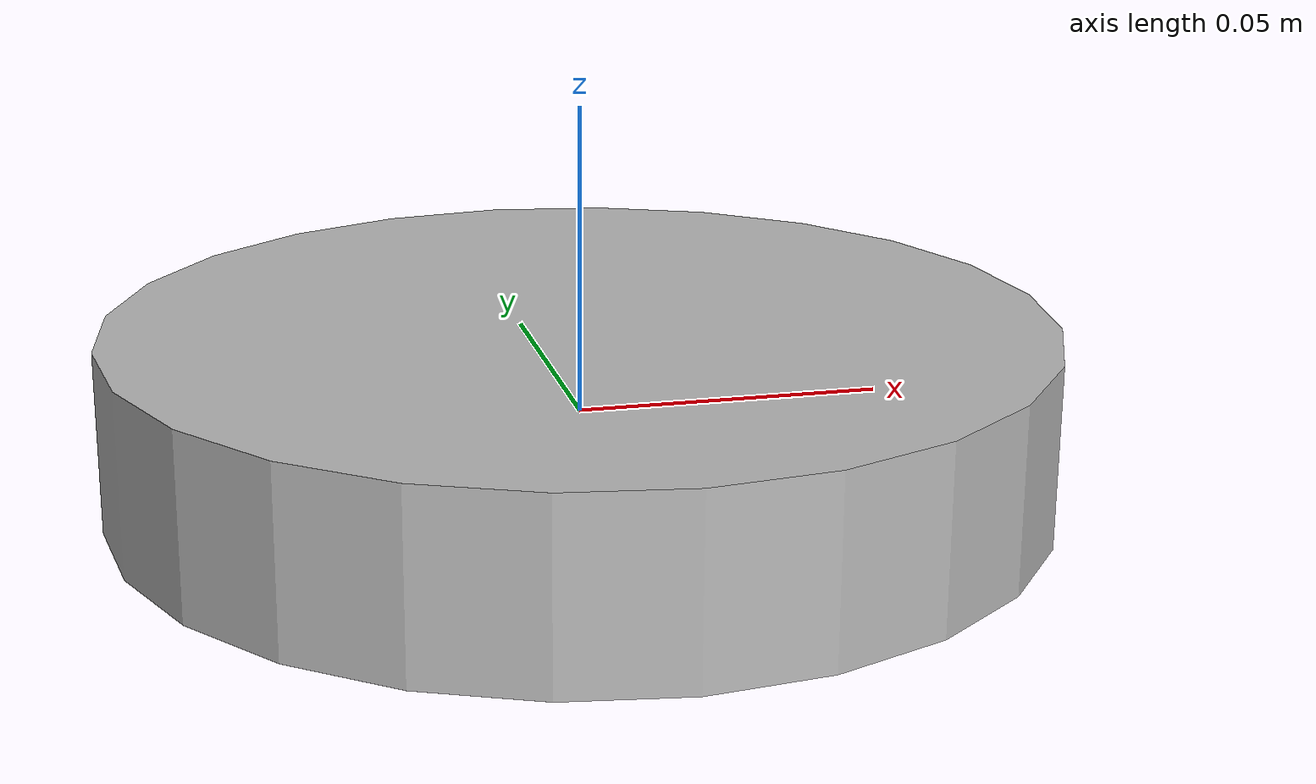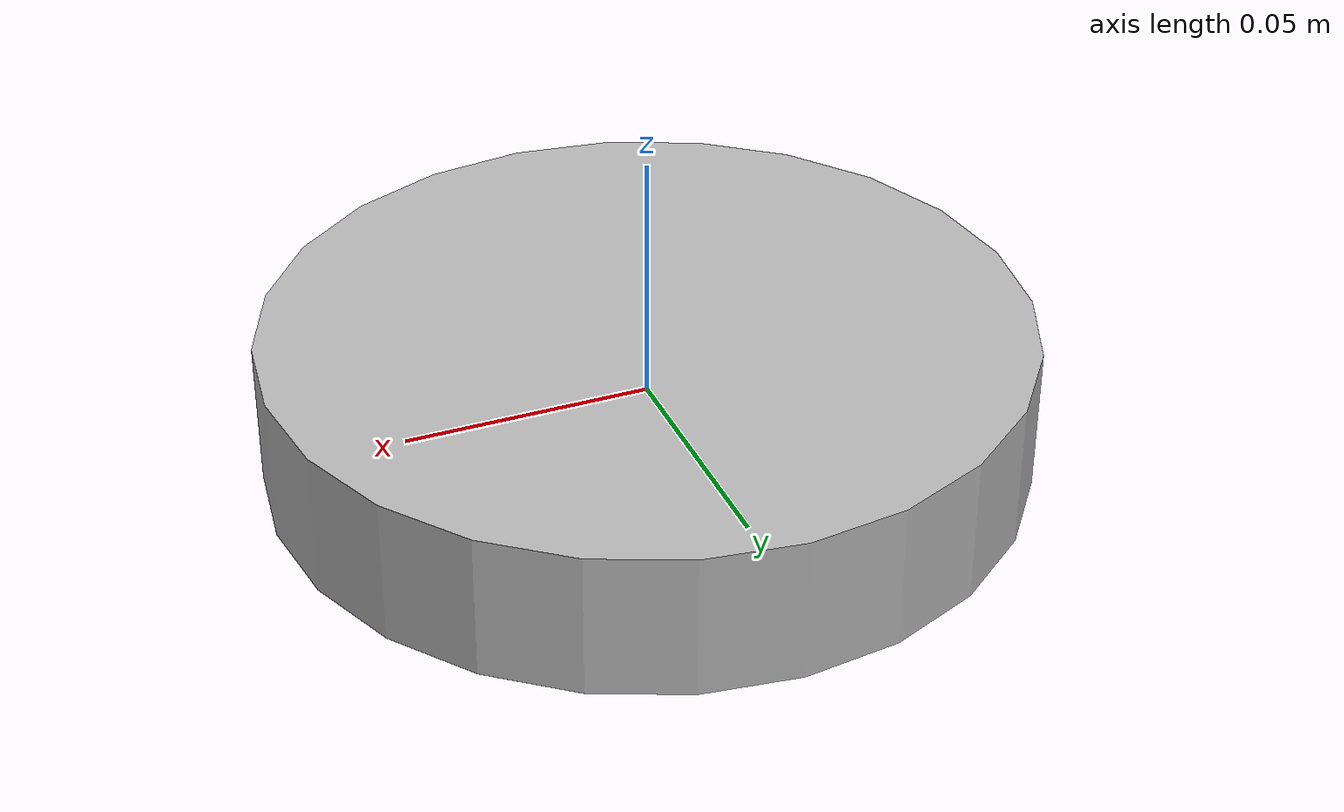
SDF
<?xml version="1.0"?>
<sdf version='1.6'>
    <model name="large_wheel">
        <static>false</static>
        <link name="large_wheel">
            <inertial>
                <mass>1.724</mass>
                <inertia>
                    <ixx>0.00266</ixx>
                    <ixy>0.0</ixy>
                    <ixz>0.0</ixz>
                    <iyy>0.00266</iyy>
                    <iyz>0.0</iyz>
                    <izz>0.00507476</izz>
                </inertia>
            </inertial>
            <collision name="collision">
                <geometry>
                    <cylinder>
                        <radius>0.0766826</radius>
                        <length>0.029718</length>
                    </cylinder>
                </geometry>
                <surface>
                    <friction>
                        <torsional>
                            <coefficient>0.7</coefficient>
                            <surface_radius>1</surface_radius>
                            <use_patch_radius>false</use_patch_radius>
                        </torsional>
                        <ode>
                            <mu>0.7</mu>
                            <mu2>0.7</mu2>
                            <slip1>0.0</slip1>
                            <slip2>0.0</slip2>
                        </ode>
                    </friction>
                    <contact>
                        <ode>
                            <min_depth>0.005</min_depth>
                            <kp>1e8</kp>
                        </ode>
                    </contact>
                </surface>
            </collision>
            <visual name="visual">
                <geometry>
                    <cylinder>
                        <radius>0.0766826</radius>
                        <length>0.029718</length>
                    </cylinder>
                </geometry>
            </visual>
        </link>
    </model>
</sdf>
